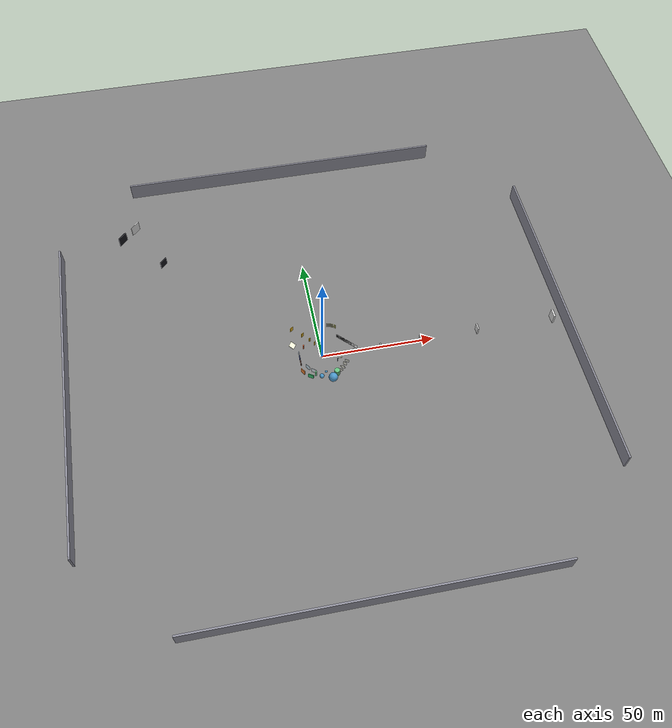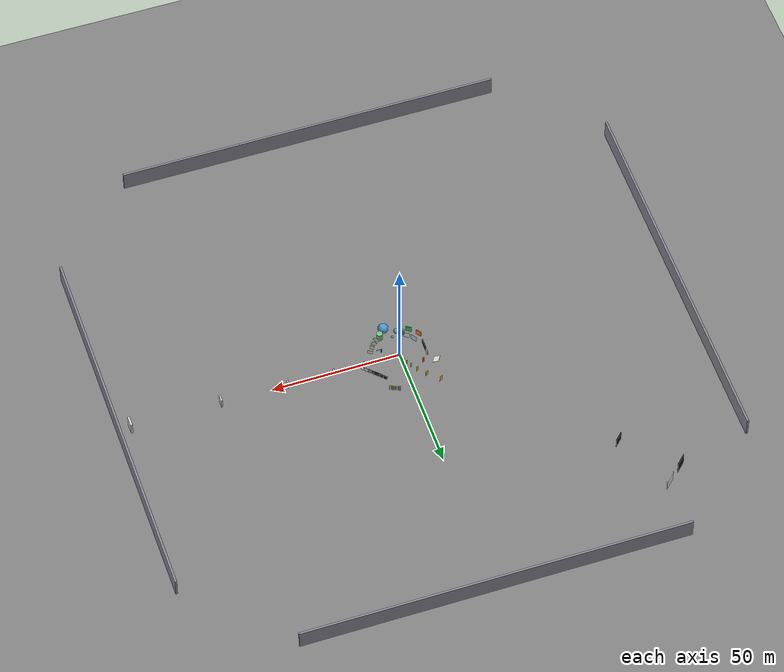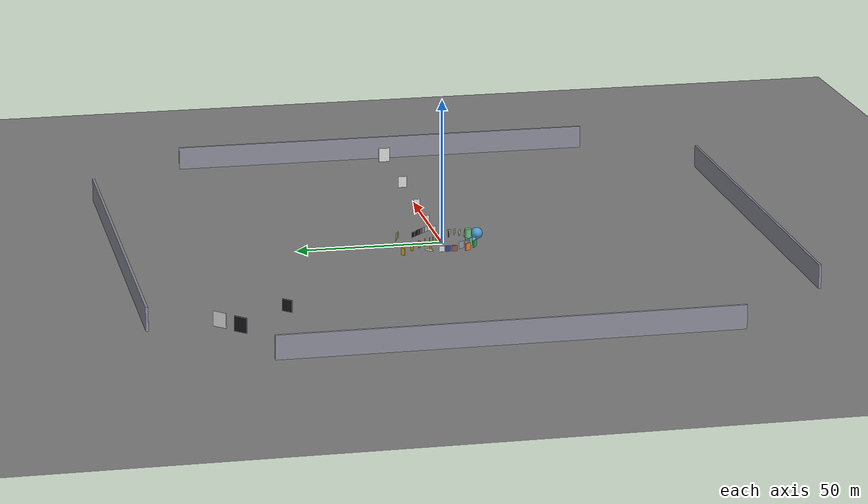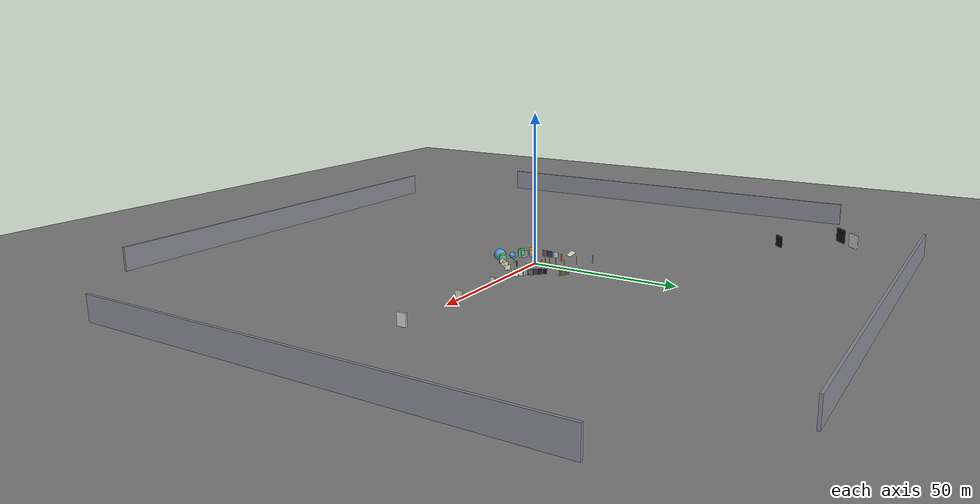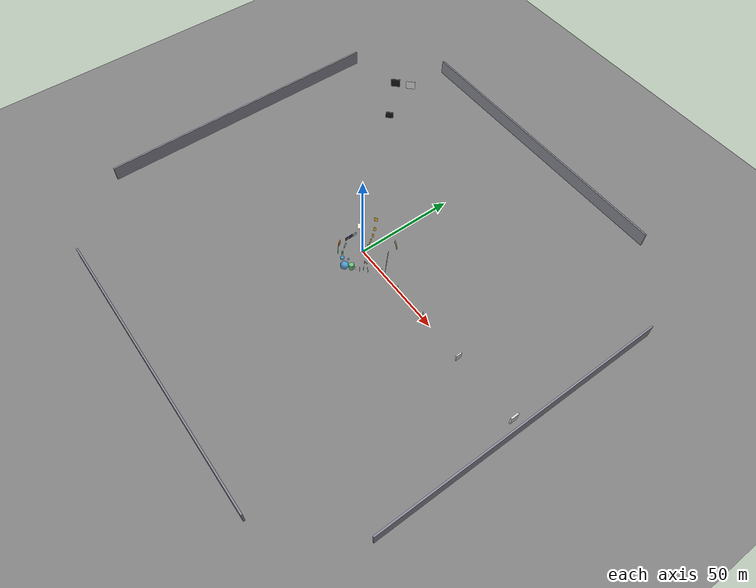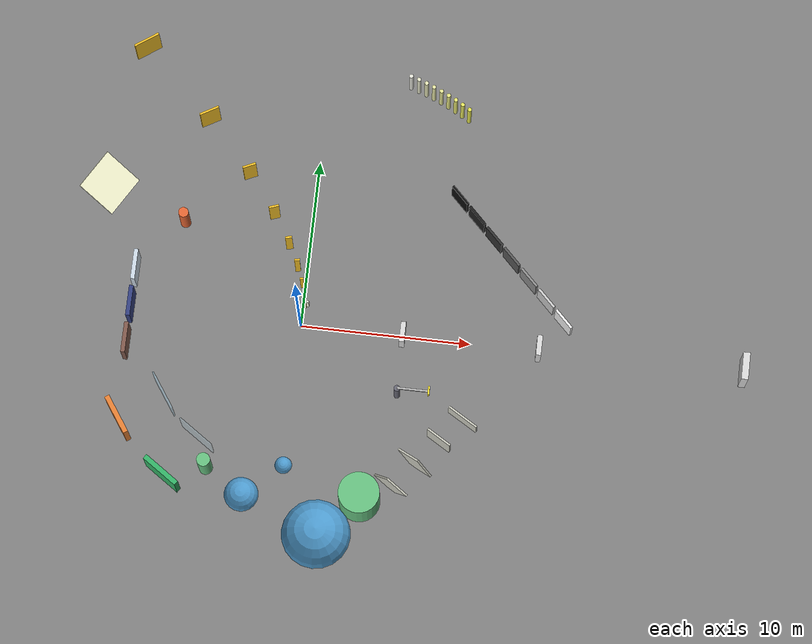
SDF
<?xml version="1.0"?>
<sdf version="1.9">
  <world name="ouster_showcase">

    <physics name="default" type="ignored">
      <max_step_size>0.004</max_step_size>
      <real_time_factor>1.0</real_time_factor>
      <real_time_update_rate>250</real_time_update_rate>
    </physics>

    <plugin filename="gz-sim-physics-system"
            name="gz::sim::systems::Physics"/>
    <plugin filename="gz-sim-altimeter-system"
            name="gz::sim::systems::Altimeter"/>
    <plugin filename="gz-sim-scene-broadcaster-system"
            name="gz::sim::systems::SceneBroadcaster"/>
    <plugin filename="gz-sim-user-commands-system"
            name="gz::sim::systems::UserCommands"/>
    <plugin filename="gz-sim-imu-system"
            name="gz::sim::systems::Imu"/>

    <scene>
      <ambient>0.4 0.4 0.4 1</ambient>
      <background>0.7 0.8 0.9 1</background>
    </scene>

    <light type="directional" name="sun">
      <cast_shadows>true</cast_shadows>
      <pose>0 0 12 0 0 0</pose>
      <diffuse>1 1 1 1</diffuse>
      <specular>0.3 0.3 0.3 1</specular>
      <direction>-0.5 0.3 -1</direction>
    </light>

    <model name="ground_plane">
      <static>true</static>
      <link name="link">
        <collision name="collision">
          <geometry><plane><normal>0 0 1</normal><size>300 300</size></plane></geometry>
        </collision>
        <visual name="visual">
          <laser_retro>0.35</laser_retro>
          <geometry><plane><normal>0 0 1</normal><size>300 300</size></plane></geometry>
          <material><ambient>0.3 0.3 0.3 1</ambient><diffuse>0.5 0.5 0.5 1</diffuse></material>
        </visual>
      </link>
    </model>

    <model name="A_range_06m">
      <static>true</static><pose>6 0 0.75 0 0 0</pose>
      <link name="link">
        <collision name="c"><geometry><box><size>0.3 1.2 1.5</size></box></geometry></collision>
        <visual name="v"><laser_retro>0.80</laser_retro>
          <geometry><box><size>0.3 1.2 1.5</size></box></geometry>
          <material><diffuse>0.85 0.85 0.85 1</diffuse></material></visual>
      </link>
    </model>
    <model name="A_range_14m">
      <static>true</static><pose>14 0 0.9 0 0 0</pose>
      <link name="link">
        <collision name="c"><geometry><box><size>0.3 1.2 1.8</size></box></geometry></collision>
        <visual name="v"><laser_retro>0.80</laser_retro>
          <geometry><box><size>0.3 1.2 1.8</size></box></geometry>
          <material><diffuse>0.85 0.85 0.85 1</diffuse></material></visual>
      </link>
    </model>
    <model name="A_range_26m">
      <static>true</static><pose>26 0 1.1 0 0 0</pose>
      <link name="link">
        <collision name="c"><geometry><box><size>0.4 1.6 2.2</size></box></geometry></collision>
        <visual name="v"><laser_retro>0.80</laser_retro>
          <geometry><box><size>0.4 1.6 2.2</size></box></geometry>
          <material><diffuse>0.85 0.85 0.85 1</diffuse></material></visual>
      </link>
    </model>
    <model name="A_range_44m">
      <static>true</static><pose>44 0 1.5 0 0 0</pose>
      <link name="link">
        <collision name="c"><geometry><box><size>0.5 2.2 3.0</size></box></geometry></collision>
        <visual name="v"><laser_retro>0.80</laser_retro>
          <geometry><box><size>0.5 2.2 3.0</size></box></geometry>
          <material><diffuse>0.85 0.85 0.85 1</diffuse></material></visual>
      </link>
    </model>
    <model name="A_range_70m">
      <static>true</static><pose>70 0 2.0 0 0 0</pose>
      <link name="link">
        <collision name="c"><geometry><box><size>0.6 3.0 4.0</size></box></geometry></collision>
        <visual name="v"><laser_retro>0.80</laser_retro>
          <geometry><box><size>0.6 3.0 4.0</size></box></geometry>
          <material><diffuse>0.85 0.85 0.85 1</diffuse></material></visual>
      </link>
    </model>
    <model name="A_range_105m">
      <static>true</static><pose>105 0 2.5 0 0 0</pose>
      <link name="link">
        <collision name="c"><geometry><box><size>0.8 4.0 5.0</size></box></geometry></collision>
        <visual name="v"><laser_retro>0.80</laser_retro>
          <geometry><box><size>0.8 4.0 5.0</size></box></geometry>
          <material><diffuse>0.85 0.85 0.85 1</diffuse></material></visual>
      </link>
    </model>

    <model name="B_retro_002">
      <static>true</static><pose>8.49 8.49 0.9 0 0 -0.7854</pose>
      <link name="link">
        <collision name="c"><geometry><box><size>1.4 0.15 1.8</size></box></geometry></collision>
        <visual name="v"><laser_retro>0.02</laser_retro>
          <geometry><box><size>1.4 0.15 1.8</size></box></geometry>
          <material><diffuse>0.05 0.05 0.05 1</diffuse></material></visual>
      </link>
    </model>
    <model name="B_retro_010">
      <static>true</static><pose>9.62 7.36 0.9 0 0 -0.7854</pose>
      <link name="link">
        <collision name="c"><geometry><box><size>1.4 0.15 1.8</size></box></geometry></collision>
        <visual name="v"><laser_retro>0.10</laser_retro>
          <geometry><box><size>1.4 0.15 1.8</size></box></geometry>
          <material><diffuse>0.12 0.12 0.12 1</diffuse></material></visual>
      </link>
    </model>
    <model name="B_retro_025">
      <static>true</static><pose>10.75 6.23 0.9 0 0 -0.7854</pose>
      <link name="link">
        <collision name="c"><geometry><box><size>1.4 0.15 1.8</size></box></geometry></collision>
        <visual name="v"><laser_retro>0.25</laser_retro>
          <geometry><box><size>1.4 0.15 1.8</size></box></geometry>
          <material><diffuse>0.2 0.2 0.2 1</diffuse></material></visual>
      </link>
    </model>
    <model name="B_retro_045">
      <static>true</static><pose>11.88 5.10 0.9 0 0 -0.7854</pose>
      <link name="link">
        <collision name="c"><geometry><box><size>1.4 0.15 1.8</size></box></geometry></collision>
        <visual name="v"><laser_retro>0.45</laser_retro>
          <geometry><box><size>1.4 0.15 1.8</size></box></geometry>
          <material><diffuse>0.35 0.35 0.35 1</diffuse></material></visual>
      </link>
    </model>
    <model name="B_retro_065">
      <static>true</static><pose>13.01 3.97 0.9 0 0 -0.7854</pose>
      <link name="link">
        <collision name="c"><geometry><box><size>1.4 0.15 1.8</size></box></geometry></collision>
        <visual name="v"><laser_retro>0.65</laser_retro>
          <geometry><box><size>1.4 0.15 1.8</size></box></geometry>
          <material><diffuse>0.55 0.55 0.55 1</diffuse></material></visual>
      </link>
    </model>
    <model name="B_retro_085">
      <static>true</static><pose>14.14 2.84 0.9 0 0 -0.7854</pose>
      <link name="link">
        <collision name="c"><geometry><box><size>1.4 0.15 1.8</size></box></geometry></collision>
        <visual name="v"><laser_retro>0.85</laser_retro>
          <geometry><box><size>1.4 0.15 1.8</size></box></geometry>
          <material><diffuse>0.8 0.8 0.8 1</diffuse></material></visual>
      </link>
    </model>
    <model name="B_retro_100">
      <static>true</static><pose>15.27 1.71 0.9 0 0 -0.7854</pose>
      <link name="link">
        <collision name="c"><geometry><box><size>1.4 0.15 1.8</size></box></geometry></collision>
        <visual name="v"><laser_retro>1.00</laser_retro>
          <geometry><box><size>1.4 0.15 1.8</size></box></geometry>
          <material><diffuse>0.95 0.95 0.95 1</diffuse></material></visual>
      </link>
    </model>

    <model name="C_retro_1p3">
      <static>true</static><pose>8.479 13.569 1.2 0 0 0</pose>
      <link name="link">
        <collision name="c"><geometry><cylinder><radius>0.12</radius><length>2.4</length></cylinder></geometry></collision>
        <visual name="v"><laser_retro>1.3</laser_retro>
          <geometry><cylinder><radius>0.12</radius><length>2.4</length></cylinder></geometry>
          <material><diffuse>0.9 0.9 0.30 1</diffuse></material></visual>
      </link>
    </model>   <!-- REFL byte 108, NEAR_IR 332 -->
    <model name="C_retro_2p6">
      <static>true</static><pose>8.048 13.828 1.2 0 0 0</pose>
      <link name="link">
        <collision name="c"><geometry><cylinder><radius>0.12</radius><length>2.4</length></cylinder></geometry></collision>
        <visual name="v"><laser_retro>2.6</laser_retro>
          <geometry><cylinder><radius>0.12</radius><length>2.4</length></cylinder></geometry>
          <material><diffuse>0.9 0.9 0.37 1</diffuse></material></visual>
      </link>
    </model>   <!-- REFL byte 130, NEAR_IR 665 -->
    <model name="C_retro_5">
      <static>true</static><pose>7.610 14.074 1.2 0 0 0</pose>
      <link name="link">
        <collision name="c"><geometry><cylinder><radius>0.12</radius><length>2.4</length></cylinder></geometry></collision>
        <visual name="v"><laser_retro>5.0</laser_retro>
          <geometry><cylinder><radius>0.12</radius><length>2.4</length></cylinder></geometry>
          <material><diffuse>0.9 0.9 0.44 1</diffuse></material></visual>
      </link>
    </model>   <!-- REFL byte 151, NEAR_IR 1280 -->
    <model name="C_retro_10">
      <static>true</static><pose>7.164 14.306 1.2 0 0 0</pose>
      <link name="link">
        <collision name="c"><geometry><cylinder><radius>0.12</radius><length>2.4</length></cylinder></geometry></collision>
        <visual name="v"><laser_retro>10.0</laser_retro>
          <geometry><cylinder><radius>0.12</radius><length>2.4</length></cylinder></geometry>
          <material><diffuse>0.9 0.9 0.51 1</diffuse></material></visual>
      </link>
    </model>   <!-- REFL byte 173, NEAR_IR 2560 -->
    <model name="C_retro_20">
      <static>true</static><pose>6.711 14.524 1.2 0 0 0</pose>
      <link name="link">
        <collision name="c"><geometry><cylinder><radius>0.12</radius><length>2.4</length></cylinder></geometry></collision>
        <visual name="v"><laser_retro>20.0</laser_retro>
          <geometry><cylinder><radius>0.12</radius><length>2.4</length></cylinder></geometry>
          <material><diffuse>0.9 0.9 0.58 1</diffuse></material></visual>
      </link>
    </model>   <!-- REFL byte 195, NEAR_IR 5120 -->
    <model name="C_retro_45">
      <static>true</static><pose>6.252 14.728 1.2 0 0 0</pose>
      <link name="link">
        <collision name="c"><geometry><cylinder><radius>0.12</radius><length>2.4</length></cylinder></geometry></collision>
        <visual name="v"><laser_retro>45.0</laser_retro>
          <geometry><cylinder><radius>0.12</radius><length>2.4</length></cylinder></geometry>
          <material><diffuse>0.9 0.9 0.65 1</diffuse></material></visual>
      </link>
    </model>   <!-- REFL byte 220, NEAR_IR 11520 -->
    <model name="C_retro_90">
      <static>true</static><pose>5.786 14.917 1.2 0 0 0</pose>
      <link name="link">
        <collision name="c"><geometry><cylinder><radius>0.12</radius><length>2.4</length></cylinder></geometry></collision>
        <visual name="v"><laser_retro>90.0</laser_retro>
          <geometry><cylinder><radius>0.12</radius><length>2.4</length></cylinder></geometry>
          <material><diffuse>0.9 0.9 0.72 1</diffuse></material></visual>
      </link>
    </model>   <!-- REFL byte 242, NEAR_IR 23040 -->
    <model name="C_retro_145">
      <static>true</static><pose>5.315 15.092 1.2 0 0 0</pose>
      <link name="link">
        <collision name="c"><geometry><cylinder><radius>0.12</radius><length>2.4</length></cylinder></geometry></collision>
        <visual name="v"><laser_retro>145.0</laser_retro>
          <geometry><cylinder><radius>0.12</radius><length>2.4</length></cylinder></geometry>
          <material><diffuse>0.9 0.9 0.79 1</diffuse></material></visual>
      </link>
    </model>   <!-- REFL byte 255, NEAR_IR 37120 -->
    <model name="C_retro_300">
      <static>true</static><pose>4.838 15.251 1.2 0 0 0</pose>
      <link name="link">
        <collision name="c"><geometry><cylinder><radius>0.12</radius><length>2.4</length></cylinder></geometry></collision>
        <visual name="v"><laser_retro>300.0</laser_retro>
          <geometry><cylinder><radius>0.12</radius><length>2.4</length></cylinder></geometry>
          <material><diffuse>0.9 0.9 0.86 1</diffuse></material></visual>
      </link>
    </model>   <!-- REFL byte 255, NEAR_IR 65535 -->

    <!-- SIGNAL ~= 22222 at 1.2 m (retro 40 -> refl byte 217) -->
    <model name="K_signal_1p2m">
      <static>true</static><pose>0.123 1.194 0.497 0 0 3.0386</pose>
      <link name="link">
        <collision name="c"><geometry><box><size>0.12 0.12 0.99</size></box></geometry></collision>
        <visual name="v"><laser_retro>40.0</laser_retro>
          <geometry><box><size>0.12 0.12 0.99</size></box></geometry>
          <material><diffuse>0.95 0.75 0.15 1</diffuse></material></visual>
      </link>
    </model>
    <!-- SIGNAL ~= 11072 at 1.7 m (retro 40 -> refl byte 217) -->
    <model name="K_signal_1p7m">
      <static>true</static><pose>0.024 1.700 0.704 0 0 3.1276</pose>
      <link name="link">
        <collision name="c"><geometry><box><size>0.15 0.12 1.41</size></box></geometry></collision>
        <visual name="v"><laser_retro>40.0</laser_retro>
          <geometry><box><size>0.15 0.12 1.41</size></box></geometry>
          <material><diffuse>0.95 0.75 0.15 1</diffuse></material></visual>
      </link>
    </model>
    <!-- SIGNAL ~= 5555 at 2.4 m (retro 40 -> refl byte 217) -->
    <model name="K_signal_2p4m">
      <static>true</static><pose>-0.180 2.393 0.994 0 0 3.2166</pose>
      <link name="link">
        <collision name="c"><geometry><box><size>0.20 0.12 1.99</size></box></geometry></collision>
        <visual name="v"><laser_retro>40.0</laser_retro>
          <geometry><box><size>0.20 0.12 1.99</size></box></geometry>
          <material><diffuse>0.95 0.75 0.15 1</diffuse></material></visual>
      </link>
    </model>
    <!-- SIGNAL ~= 2768 at 3.4 m (retro 40 -> refl byte 217) -->
    <model name="K_signal_3p4m">
      <static>true</static><pose>-0.555 3.354 1.250 0 0 3.3057</pose>
      <link name="link">
        <collision name="c"><geometry><box><size>0.30 0.12 2.50</size></box></geometry></collision>
        <visual name="v"><laser_retro>40.0</laser_retro>
          <geometry><box><size>0.30 0.12 2.50</size></box></geometry>
          <material><diffuse>0.95 0.75 0.15 1</diffuse></material></visual>
      </link>
    </model>
    <!-- SIGNAL ~= 1388 at 4.8 m (retro 40 -> refl byte 217) -->
    <model name="K_signal_4p8m">
      <static>true</static><pose>-1.202 4.647 1.250 0 0 3.3947</pose>
      <link name="link">
        <collision name="c"><geometry><box><size>0.40 0.12 2.50</size></box></geometry></collision>
        <visual name="v"><laser_retro>40.0</laser_retro>
          <geometry><box><size>0.40 0.12 2.50</size></box></geometry>
          <material><diffuse>0.95 0.75 0.15 1</diffuse></material></visual>
      </link>
    </model>
    <!-- SIGNAL ~= 692 at 6.8 m (retro 40 -> refl byte 217) -->
    <model name="K_signal_6p8m">
      <static>true</static><pose>-2.281 6.406 1.250 0 0 3.4837</pose>
      <link name="link">
        <collision name="c"><geometry><box><size>0.60 0.12 2.50</size></box></geometry></collision>
        <visual name="v"><laser_retro>40.0</laser_retro>
          <geometry><box><size>0.60 0.12 2.50</size></box></geometry>
          <material><diffuse>0.95 0.75 0.15 1</diffuse></material></visual>
      </link>
    </model>
    <!-- SIGNAL ~= 347 at 9.6 m (retro 40 -> refl byte 217) -->
    <model name="K_signal_9p6m">
      <static>true</static><pose>-4.012 8.722 1.250 0 0 3.5727</pose>
      <link name="link">
        <collision name="c"><geometry><box><size>0.80 0.12 2.50</size></box></geometry></collision>
        <visual name="v"><laser_retro>40.0</laser_retro>
          <geometry><box><size>0.80 0.12 2.50</size></box></geometry>
          <material><diffuse>0.95 0.75 0.15 1</diffuse></material></visual>
      </link>
    </model>
    <!-- SIGNAL ~= 173 at 13.6 m (retro 40 -> refl byte 217) -->
    <model name="K_signal_13p6m">
      <static>true</static><pose>-6.759 11.802 1.250 0 0 3.6617</pose>
      <link name="link">
        <collision name="c"><geometry><box><size>1.20 0.12 2.50</size></box></geometry></collision>
        <visual name="v"><laser_retro>40.0</laser_retro>
          <geometry><box><size>1.20 0.12 2.50</size></box></geometry>
          <material><diffuse>0.95 0.75 0.15 1</diffuse></material></visual>
      </link>
    </model>
    <!-- SIGNAL ~= 86 at 19.2 m (retro 40 -> refl byte 217) -->
    <model name="K_signal_19p2m">
      <static>true</static><pose>-10.985 15.747 1.250 0 0 3.7507</pose>
      <link name="link">
        <collision name="c"><geometry><box><size>1.60 0.12 2.50</size></box></geometry></collision>
        <visual name="v"><laser_retro>40.0</laser_retro>
          <geometry><box><size>1.60 0.12 2.50</size></box></geometry>
          <material><diffuse>0.95 0.75 0.15 1</diffuse></material></visual>
      </link>
    </model>
    <!-- SIGNAL saturates: 800*145/1.3^2 = 68639 -> clamped to 65535; REFL also saturates at 255 -->
    <model name="K_signal_saturate">
      <static>true</static><pose>0.270 1.272 0.538 0 0 2.9322</pose>
      <link name="link">
        <collision name="c"><geometry><box><size>0.14 0.12 1.08</size></box></geometry></collision>
        <visual name="v"><laser_retro>145.0</laser_retro>
          <geometry><box><size>0.14 0.12 1.08</size></box></geometry>
          <material><diffuse>1 1 0.9 1</diffuse></material></visual>
      </link>
    </model>

    <model name="D_dark_90m">
      <static>true</static><pose>-63.64 63.64 2.0 0 0 0.7854</pose>
      <link name="link">
        <collision name="c"><geometry><box><size>4.0 0.3 4.0</size></box></geometry></collision>
        <visual name="v"><laser_retro>0.10</laser_retro>
          <geometry><box><size>4.0 0.3 4.0</size></box></geometry>
          <material><diffuse>0.1 0.1 0.12 1</diffuse></material></visual>
      </link>
    </model>
    <model name="D_dark_115m">
      <static>true</static><pose>-81.32 81.32 2.5 0 0 0.7854</pose>
      <link name="link">
        <collision name="c"><geometry><box><size>5.0 0.3 5.0</size></box></geometry></collision>
        <visual name="v"><laser_retro>0.10</laser_retro>
          <geometry><box><size>5.0 0.3 5.0</size></box></geometry>
          <material><diffuse>0.1 0.1 0.12 1</diffuse></material></visual>
      </link>
    </model>
    <model name="D_bright_115m">
      <static>true</static><pose>-75.0 87.0 2.5 0 0 0.7854</pose>
      <link name="link">
        <collision name="c"><geometry><box><size>5.0 0.3 5.0</size></box></geometry></collision>
        <visual name="v"><laser_retro>0.80</laser_retro>
          <geometry><box><size>5.0 0.3 5.0</size></box></geometry>
          <material><diffuse>0.9 0.9 0.9 1</diffuse></material></visual>
      </link>
    </model>

    <model name="H_nir_saturate">
      <static>true</static><pose>-12.124 7.000 1.6 0 0.5279 -0.5404</pose>
      <link name="link">
        <collision name="c"><geometry><box><size>2.60 2.60 0.10</size></box></geometry></collision>
        <visual name="v"><laser_retro>300.0</laser_retro>
          <geometry><box><size>2.60 2.60 0.10</size></box></geometry>
          <material><diffuse>1 1 0.85 1</diffuse></material></visual>
      </link>
    </model>
    <model name="E_matte">
      <static>true</static><pose>-10 -2.2 1.0 0 0 0</pose>
      <link name="link">
        <collision name="c"><geometry><box><size>0.25 1.8 2.0</size></box></geometry></collision>
        <visual name="v"><laser_retro>0.6</laser_retro>
          <geometry><box><size>0.25 1.8 2.0</size></box></geometry>
          <material><diffuse>0.5 0.35 0.3 1</diffuse><specular>0.1 0.1 0.1 1</specular></material></visual>
      </link>
    </model>
    <model name="E_glossy">
      <static>true</static><pose>-10 0 1.0 0 0 0</pose>
      <link name="link">
        <collision name="c"><geometry><box><size>0.25 1.8 2.0</size></box></geometry></collision>
        <visual name="v"><laser_retro>0.6</laser_retro>
          <geometry><box><size>0.25 1.8 2.0</size></box></geometry>
          <material><diffuse>0.2 0.25 0.5 1</diffuse><specular>0.45 0.45 0.45 1</specular></material></visual>
      </link>
    </model>
    <model name="E_mirror">
      <static>true</static><pose>-10 2.2 1.0 0 0 0</pose>
      <link name="link">
        <collision name="c"><geometry><box><size>0.25 1.8 2.0</size></box></geometry></collision>
        <visual name="v"><laser_retro>0.6</laser_retro>
          <geometry><box><size>0.25 1.8 2.0</size></box></geometry>
          <material><diffuse>0.8 0.85 0.9 1</diffuse><specular>0.95 0.95 0.95 1</specular></material></visual>
      </link>
    </model>
    <!-- Ghost bait: a bright post off to the side of the mirror. Its mirrored
         image is what shows up behind E_mirror in the cloud. -->
    <model name="E_ghost_bait">
      <static>true</static><pose>-7.5 5.5 1.2 0 0 0</pose>
      <link name="link">
        <collision name="c"><geometry><cylinder><radius>0.3</radius><length>2.4</length></cylinder></geometry></collision>
        <visual name="v"><laser_retro>1.00</laser_retro>
          <geometry><cylinder><radius>0.3</radius><length>2.4</length></cylinder></geometry>
          <material><diffuse>0.9 0.4 0.2 1</diffuse></material></visual>
      </link>
    </model>

    <model name="F_pane_60">
      <static>true</static><pose>-7.37 -5.16 1.2 0 0 0.6</pose>
      <link name="link">
        <collision name="c"><geometry><box><size>0.08 2.4 2.4</size></box></geometry></collision>
        <visual name="v">
          <transparency>0.60</transparency>
          <geometry><box><size>0.08 2.4 2.4</size></box></geometry>
          <material><diffuse>0.6 0.8 0.9 0.4</diffuse><specular>0.6 0.6 0.6 1</specular></material></visual>
      </link>
    </model>
    <model name="F_wall_behind_60">
      <static>true</static><pose>-9.83 -6.88 1.2 0 0 0.6</pose>
      <link name="link">
        <collision name="c"><geometry><box><size>0.3 2.4 2.4</size></box></geometry></collision>
        <visual name="v"><laser_retro>0.9</laser_retro>
          <geometry><box><size>0.3 2.4 2.4</size></box></geometry>
          <material><diffuse>0.9 0.5 0.2 1</diffuse></material></visual>
      </link>
    </model>
    <model name="F_pane_92">
      <static>true</static><pose>-5.16 -7.37 1.2 0 0 0.97</pose>
      <link name="link">
        <collision name="c"><geometry><box><size>0.08 2.4 2.4</size></box></geometry></collision>
        <visual name="v">
          <transparency>0.92</transparency>
          <geometry><box><size>0.08 2.4 2.4</size></box></geometry>
          <material><diffuse>0.7 0.9 1.0 0.15</diffuse><specular>0.6 0.6 0.6 1</specular></material></visual>
      </link>
    </model>
    <model name="F_wall_behind_92">
      <static>true</static><pose>-6.88 -9.83 1.2 0 0 0.97</pose>
      <link name="link">
        <collision name="c"><geometry><box><size>0.3 2.4 2.4</size></box></geometry></collision>
        <visual name="v"><laser_retro>0.9</laser_retro>
          <geometry><box><size>0.3 2.4 2.4</size></box></geometry>
          <material><diffuse>0.2 0.7 0.4 1</diffuse></material></visual>
      </link>
    </model>

    <model name="G_sphere_small">
      <static>true</static><pose>0 -8.5 0.8 0 0 0</pose>
      <link name="link">
        <collision name="c"><geometry><sphere><radius>0.5</radius></sphere></geometry></collision>
        <visual name="v"><laser_retro>0.7</laser_retro>
          <geometry><sphere><radius>0.5</radius></sphere></geometry>
          <material><diffuse>0.3 0.6 0.8 1</diffuse></material></visual>
      </link>
    </model>
    <model name="G_sphere_mid">
      <static>true</static><pose>-2.2 -10.5 1.0 0 0 0</pose>
      <link name="link">
        <collision name="c"><geometry><sphere><radius>1.0</radius></sphere></geometry></collision>
        <visual name="v"><laser_retro>0.7</laser_retro>
          <geometry><sphere><radius>1.0</radius></sphere></geometry>
          <material><diffuse>0.3 0.6 0.8 1</diffuse></material></visual>
      </link>
    </model>
    <model name="G_sphere_big">
      <static>true</static><pose>2.4 -12.5 2.0 0 0 0</pose>
      <link name="link">
        <collision name="c"><geometry><sphere><radius>2.0</radius></sphere></geometry></collision>
        <visual name="v"><laser_retro>0.7</laser_retro>
          <geometry><sphere><radius>2.0</radius></sphere></geometry>
          <material><diffuse>0.3 0.6 0.8 1</diffuse></material></visual>
      </link>
    </model>
    <model name="G_cyl_thin">
      <static>true</static><pose>-4.5 -9.0 1.3 0 0 0</pose>
      <link name="link">
        <collision name="c"><geometry><cylinder><radius>0.4</radius><length>2.6</length></cylinder></geometry></collision>
        <visual name="v"><laser_retro>0.7</laser_retro>
          <geometry><cylinder><radius>0.4</radius><length>2.6</length></cylinder></geometry>
          <material><diffuse>0.4 0.75 0.5 1</diffuse></material></visual>
      </link>
    </model>
    <model name="G_cyl_fat">
      <static>true</static><pose>4.6 -10.0 1.5 0 0 0</pose>
      <link name="link">
        <collision name="c"><geometry><cylinder><radius>1.2</radius><length>3.0</length></cylinder></geometry></collision>
        <visual name="v"><laser_retro>0.7</laser_retro>
          <geometry><cylinder><radius>1.2</radius><length>3.0</length></cylinder></geometry>
          <material><diffuse>0.4 0.75 0.5 1</diffuse></material></visual>
      </link>
    </model>

    <model name="H_face_sun">
      <static>true</static><pose>6.31 -9.01 1.0 0 -0.5 2.6</pose>
      <link name="link">
        <collision name="c"><geometry><box><size>1.6 0.12 2.0</size></box></geometry></collision>
        <visual name="v"><laser_retro>0.7</laser_retro>
          <geometry><box><size>1.6 0.12 2.0</size></box></geometry>
          <material><diffuse>0.8 0.8 0.75 1</diffuse></material></visual>
      </link>
    </model>
    <model name="H_face_away">
      <static>true</static><pose>7.55 -7.55 1.0 0 0.5 2.6</pose>
      <link name="link">
        <collision name="c"><geometry><box><size>1.6 0.12 2.0</size></box></geometry></collision>
        <visual name="v"><laser_retro>0.7</laser_retro>
          <geometry><box><size>1.6 0.12 2.0</size></box></geometry>
          <material><diffuse>0.8 0.8 0.75 1</diffuse></material></visual>
      </link>
    </model>
    <model name="H_vertical">
      <static>true</static><pose>8.79 -6.09 1.0 0 0 2.6</pose>
      <link name="link">
        <collision name="c"><geometry><box><size>1.6 0.12 2.0</size></box></geometry></collision>
        <visual name="v"><laser_retro>0.7</laser_retro>
          <geometry><box><size>1.6 0.12 2.0</size></box></geometry>
          <material><diffuse>0.8 0.8 0.75 1</diffuse></material></visual>
      </link>
    </model>
    <model name="H_flat_up">
      <static>true</static><pose>10.03 -4.63 0.6 0 1.5708 2.6</pose>
      <link name="link">
        <collision name="c"><geometry><box><size>1.6 0.12 2.0</size></box></geometry></collision>
        <visual name="v"><laser_retro>0.7</laser_retro>
          <geometry><box><size>1.6 0.12 2.0</size></box></geometry>
          <material><diffuse>0.8 0.8 0.75 1</diffuse></material></visual>
      </link>
    </model>

    <model name="I_beacon">
      <pose>6.06 -3.5 0 0 0 0</pose>
      <link name="post">
        <inertial><mass>50</mass>
          <inertia><ixx>4</ixx><iyy>4</iyy><izz>1</izz><ixy>0</ixy><ixz>0</ixz><iyz>0</iyz></inertia></inertial>
        <collision name="c"><pose>0 0 1.0 0 0 0</pose>
          <geometry><cylinder><radius>0.18</radius><length>2.0</length></cylinder></geometry></collision>
        <visual name="v"><pose>0 0 1.0 0 0 0</pose>
          <laser_retro>0.55</laser_retro>
          <geometry><cylinder><radius>0.18</radius><length>2.0</length></cylinder></geometry>
          <material><diffuse>0.4 0.4 0.45 1</diffuse></material></visual>
      </link>
      <link name="arm">
        <pose>0 0 2.05 0 0 0</pose>
        <inertial><mass>5</mass>
          <inertia><ixx>0.5</ixx><iyy>0.5</iyy><izz>0.9</izz><ixy>0</ixy><ixz>0</ixz><iyz>0</iyz></inertia></inertial>
        <collision name="c"><pose>0.9 0 0 0 0 0</pose>
          <geometry><box><size>1.8 0.12 0.12</size></box></geometry></collision>
        <visual name="v"><pose>0.9 0 0 0 0 0</pose>
          <laser_retro>0.6</laser_retro>
          <geometry><box><size>1.8 0.12 0.12</size></box></geometry>
          <material><diffuse>0.7 0.7 0.7 1</diffuse></material></visual>
        <!-- Retroreflective paddle on the arm tip: easy to track frame to
             frame in the cloud, and lands in the 101-255 reflectivity band. -->
        <collision name="paddle_c"><pose>1.85 0 0 0 0 0</pose>
          <geometry><box><size>0.1 0.5 0.5</size></box></geometry></collision>
        <visual name="paddle_v"><pose>1.85 0 0 0 0 0</pose>
          <laser_retro>12.0</laser_retro>
          <geometry><box><size>0.1 0.5 0.5</size></box></geometry>
          <material><diffuse>1 0.9 0.2 1</diffuse></material></visual>
      </link>
      <joint name="base_fixed" type="fixed">
        <parent>world</parent>
        <child>post</child>
      </joint>
      <joint name="arm_joint" type="revolute">
        <parent>post</parent>
        <child>arm</child>
        <axis>
          <xyz>0 0 1</xyz>
          <limit><lower>-1e16</lower><upper>1e16</upper></limit>
          <dynamics><damping>0.02</damping></dynamics>
        </axis>
      </joint>
      <plugin filename="gz-sim-joint-controller-system"
              name="gz::sim::systems::JointController">
        <joint_name>arm_joint</joint_name>
        <initial_velocity>0.6</initial_velocity>
      </plugin>
    </model>

    <model name="J_wall_north">
      <static>true</static><pose>0 110 4 0 0 0</pose>
      <link name="link">
        <collision name="c"><geometry><box><size>150 0.8 8</size></box></geometry></collision>
        <visual name="v"><laser_retro>0.75</laser_retro>
          <geometry><box><size>150 0.8 8</size></box></geometry>
          <material><diffuse>0.55 0.55 0.6 1</diffuse></material></visual>
      </link>
    </model>
    <model name="J_wall_south">
      <static>true</static><pose>0 -110 4 0 0 0</pose>
      <link name="link">
        <collision name="c"><geometry><box><size>150 0.8 8</size></box></geometry></collision>
        <visual name="v"><laser_retro>0.75</laser_retro>
          <geometry><box><size>150 0.8 8</size></box></geometry>
          <material><diffuse>0.55 0.55 0.6 1</diffuse></material></visual>
      </link>
    </model>
    <model name="J_wall_east">
      <static>true</static><pose>110 0 4 0 0 1.5708</pose>
      <link name="link">
        <collision name="c"><geometry><box><size>150 0.8 8</size></box></geometry></collision>
        <visual name="v"><laser_retro>0.75</laser_retro>
          <geometry><box><size>150 0.8 8</size></box></geometry>
          <material><diffuse>0.55 0.55 0.6 1</diffuse></material></visual>
      </link>
    </model>
    <model name="J_wall_west">
      <static>true</static><pose>-110 0 4 0 0 1.5708</pose>
      <link name="link">
        <collision name="c"><geometry><box><size>150 0.8 8</size></box></geometry></collision>
        <visual name="v"><laser_retro>0.75</laser_retro>
          <geometry><box><size>150 0.8 8</size></box></geometry>
          <material><diffuse>0.55 0.55 0.6 1</diffuse></material></visual>
      </link>
    </model>

  </world>
</sdf>
